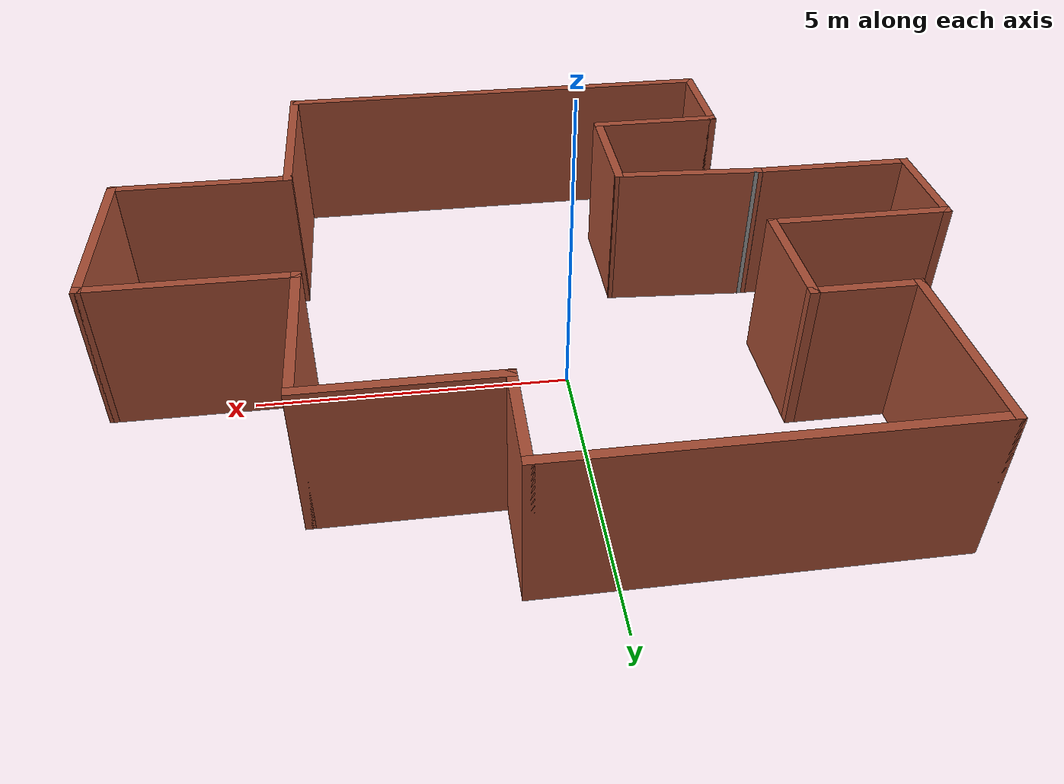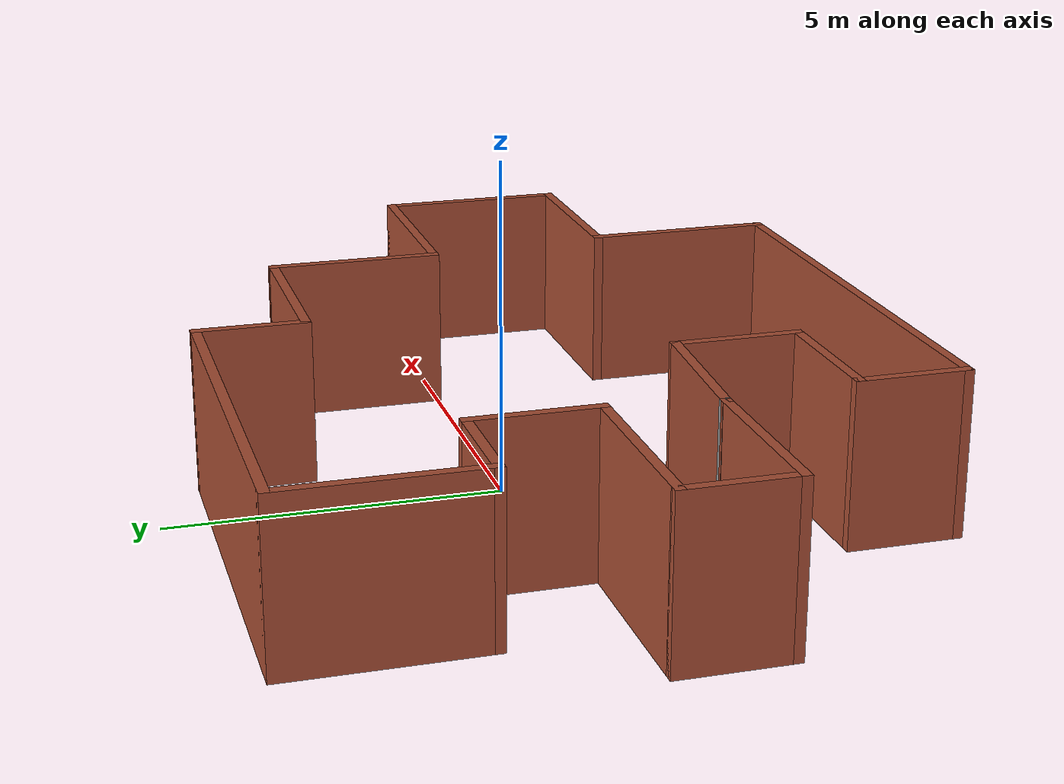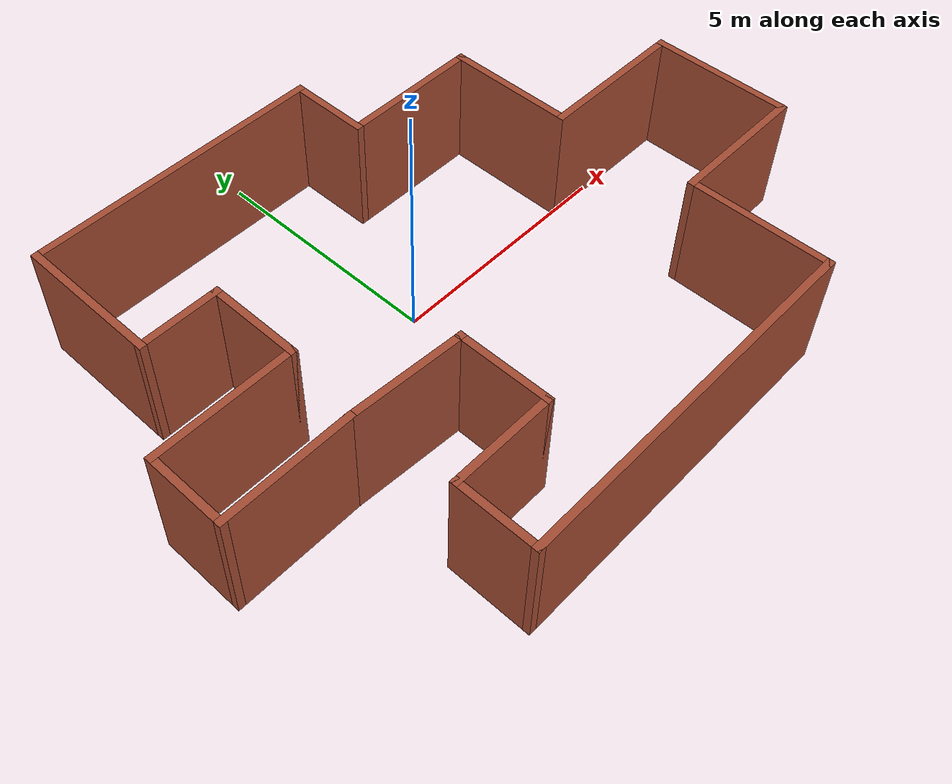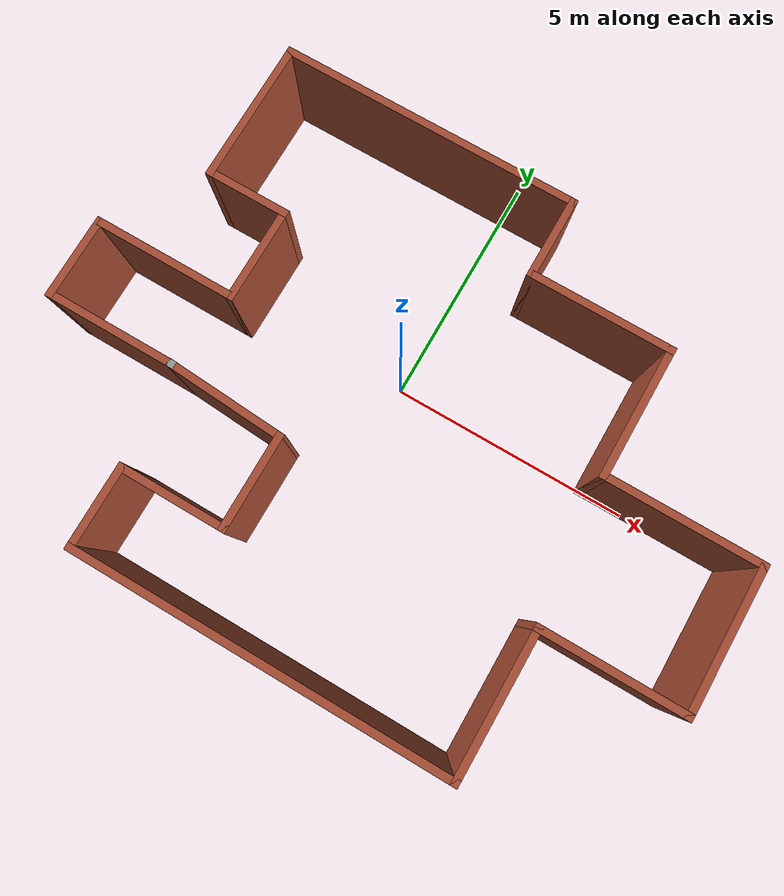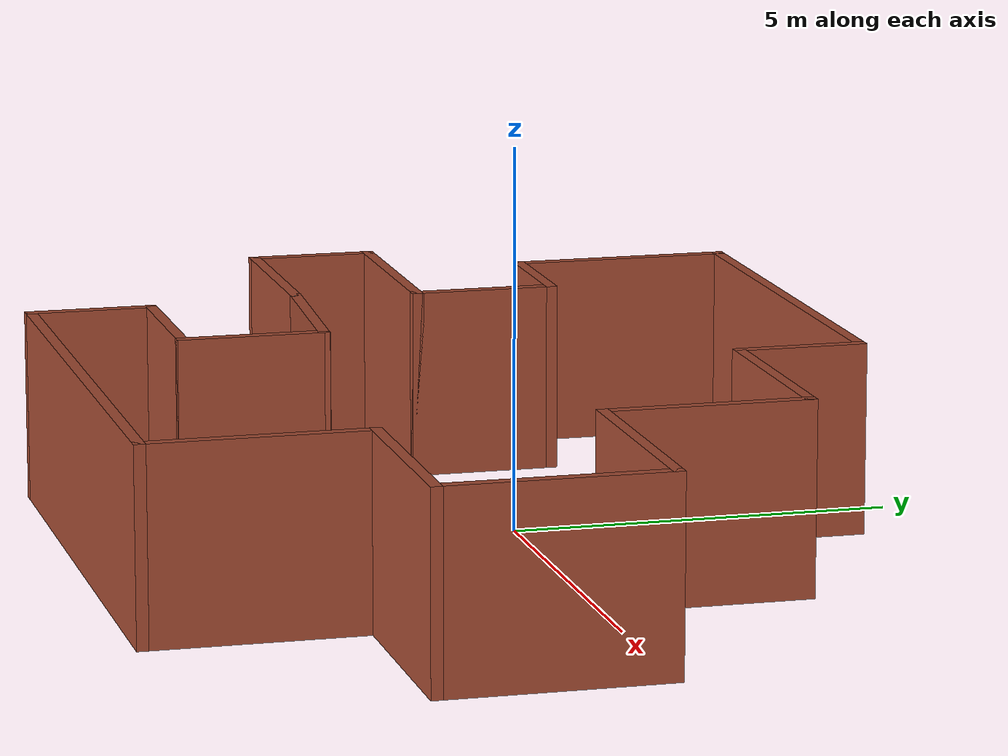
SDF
<?xml version='1.0'?>
<sdf version='1.7'>
  <model name='myworld'>
    <pose>0.52 -0.73 0 0 -0 0</pose>
    <link name='Wall_0'>
      <collision name='Wall_0_Collision'>
        <geometry>
          <box>
            <size>2.75 0.15 2.5</size>
          </box>
        </geometry>
        <pose>0 0 1.25 0 -0 0</pose>
      </collision>
      <visual name='Wall_0_Visual'>
        <pose>0 0 1.25 0 -0 0</pose>
        <geometry>
          <box>
            <size>2.75 0.15 2.5</size>
          </box>
        </geometry>
        <material>
          <script>
            <uri>file://media/materials/scripts/gazebo.material</uri>
            <name>Gazebo/Bricks</name>
          </script>
          <ambient>1 1 1 1</ambient>
        </material>
        <meta>
          <layer>0</layer>
        </meta>
      </visual>
      <pose>-5.35 -1.35 0 0 -0 3.14159</pose>
    </link>
    <link name='Wall_1'>
      <collision name='Wall_1_Collision'>
        <geometry>
          <box>
            <size>1.75 0.15 2.5</size>
          </box>
        </geometry>
        <pose>0 0 1.25 0 -0 0</pose>
      </collision>
      <visual name='Wall_1_Visual'>
        <pose>0 0 1.25 0 -0 0</pose>
        <geometry>
          <box>
            <size>1.75 0.15 2.5</size>
          </box>
        </geometry>
        <material>
          <script>
            <uri>file://media/materials/scripts/gazebo.material</uri>
            <name>Gazebo/Bricks</name>
          </script>
          <ambient>1 1 1 1</ambient>
        </material>
        <meta>
          <layer>0</layer>
        </meta>
      </visual>
      <pose>-6.65 -0.55 0 0 -0 1.5708</pose>
    </link>
    <link name='Wall_10'>
      <collision name='Wall_10_Collision'>
        <geometry>
          <box>
            <size>3.25 0.15 2.5</size>
          </box>
        </geometry>
        <pose>0 0 1.25 0 -0 0</pose>
      </collision>
      <visual name='Wall_10_Visual'>
        <pose>0 0 1.25 0 -0 0</pose>
        <geometry>
          <box>
            <size>3.25 0.15 2.5</size>
          </box>
        </geometry>
        <material>
          <script>
            <uri>file://media/materials/scripts/gazebo.material</uri>
            <name>Gazebo/Bricks</name>
          </script>
          <ambient>1 1 1 1</ambient>
        </material>
        <meta>
          <layer>0</layer>
        </meta>
      </visual>
      <pose>5.1 0.75 0 0 -0 0</pose>
    </link>
    <link name='Wall_11'>
      <collision name='Wall_11_Collision'>
        <geometry>
          <box>
            <size>3 0.15 2.5</size>
          </box>
        </geometry>
        <pose>0 0 1.25 0 -0 0</pose>
      </collision>
      <visual name='Wall_11_Visual'>
        <pose>0 0 1.25 0 -0 0</pose>
        <geometry>
          <box>
            <size>3 0.15 2.5</size>
          </box>
        </geometry>
        <material>
          <script>
            <uri>file://media/materials/scripts/gazebo.material</uri>
            <name>Gazebo/Bricks</name>
          </script>
          <ambient>1 1 1 1</ambient>
        </material>
        <meta>
          <layer>0</layer>
        </meta>
      </visual>
      <pose>6.65 -0.675 0 0 -0 -1.5708</pose>
    </link>
    <link name='Wall_12'>
      <collision name='Wall_12_Collision'>
        <geometry>
          <box>
            <size>3 0.15 2.5</size>
          </box>
        </geometry>
        <pose>0 0 1.25 0 -0 0</pose>
      </collision>
      <visual name='Wall_12_Visual'>
        <pose>0 0 1.25 0 -0 0</pose>
        <geometry>
          <box>
            <size>3 0.15 2.5</size>
          </box>
        </geometry>
        <material>
          <script>
            <uri>file://media/materials/scripts/gazebo.material</uri>
            <name>Gazebo/Bricks</name>
          </script>
          <ambient>1 1 1 1</ambient>
        </material>
        <meta>
          <layer>0</layer>
        </meta>
      </visual>
      <pose>5.225 -2.1 0 0 -0 3.14159</pose>
    </link>
    <link name='Wall_13'>
      <collision name='Wall_13_Collision'>
        <geometry>
          <box>
            <size>3 0.15 2.5</size>
          </box>
        </geometry>
        <pose>0 0 1.25 0 -0 0</pose>
      </collision>
      <visual name='Wall_13_Visual'>
        <pose>0 0 1.25 0 -0 0</pose>
        <geometry>
          <box>
            <size>3 0.15 2.5</size>
          </box>
        </geometry>
        <material>
          <script>
            <uri>file://media/materials/scripts/gazebo.material</uri>
            <name>Gazebo/Bricks</name>
          </script>
          <ambient>1 1 1 1</ambient>
        </material>
        <meta>
          <layer>0</layer>
        </meta>
      </visual>
      <pose>3.8 -3.525 0 0 -0 -1.5708</pose>
    </link>
    <link name='Wall_14'>
      <collision name='Wall_14_Collision'>
        <geometry>
          <box>
            <size>7.75 0.15 2.5</size>
          </box>
        </geometry>
        <pose>0 0 1.25 0 -0 0</pose>
      </collision>
      <visual name='Wall_14_Visual'>
        <pose>0 0 1.25 0 -0 0</pose>
        <geometry>
          <box>
            <size>7.75 0.15 2.5</size>
          </box>
        </geometry>
        <material>
          <script>
            <uri>file://media/materials/scripts/gazebo.material</uri>
            <name>Gazebo/Bricks</name>
          </script>
          <ambient>1 1 1 1</ambient>
        </material>
        <meta>
          <layer>0</layer>
        </meta>
      </visual>
      <pose>0 -4.95 0 0 -0 3.14159</pose>
    </link>
    <link name='Wall_15'>
      <collision name='Wall_15_Collision'>
        <geometry>
          <box>
            <size>1.75 0.15 2.5</size>
          </box>
        </geometry>
        <pose>0 0 1.25 0 -0 0</pose>
      </collision>
      <visual name='Wall_15_Visual'>
        <pose>0 0 1.25 0 -0 0</pose>
        <geometry>
          <box>
            <size>1.75 0.15 2.5</size>
          </box>
        </geometry>
        <material>
          <script>
            <uri>file://media/materials/scripts/gazebo.material</uri>
            <name>Gazebo/Bricks</name>
          </script>
          <ambient>1 1 1 1</ambient>
        </material>
        <meta>
          <layer>0</layer>
        </meta>
      </visual>
      <pose>-3.8 -4.15 0 0 -0 1.5708</pose>
    </link>
    <link name='Wall_16'>
      <collision name='Wall_16_Collision'>
        <geometry>
          <box>
            <size>2.25 0.15 2.5</size>
          </box>
        </geometry>
        <pose>0 0 1.25 0 -0 0</pose>
      </collision>
      <visual name='Wall_16_Visual'>
        <pose>0 0 1.25 0 -0 0</pose>
        <geometry>
          <box>
            <size>2.25 0.15 2.5</size>
          </box>
        </geometry>
        <material>
          <script>
            <uri>file://media/materials/scripts/gazebo.material</uri>
            <name>Gazebo/Bricks</name>
          </script>
          <ambient>1 1 1 1</ambient>
        </material>
        <meta>
          <layer>0</layer>
        </meta>
      </visual>
      <pose>-2.75 -3.35 0 0 -0 0</pose>
    </link>
    <link name='Wall_17'>
      <collision name='Wall_17_Collision'>
        <geometry>
          <box>
            <size>2 0.15 2.5</size>
          </box>
        </geometry>
        <pose>0 0 1.25 0 -0 0</pose>
      </collision>
      <visual name='Wall_17_Visual'>
        <pose>0 0 1.25 0 -0 0</pose>
        <geometry>
          <box>
            <size>2 0.15 2.5</size>
          </box>
        </geometry>
        <material>
          <script>
            <uri>file://media/materials/scripts/gazebo.material</uri>
            <name>Gazebo/Bricks</name>
          </script>
          <ambient>1 1 1 1</ambient>
        </material>
        <meta>
          <layer>0</layer>
        </meta>
      </visual>
      <pose>-1.7 -2.425 0 0 -0 1.5708</pose>
    </link>
    <link name='Wall_18'>
      <collision name='Wall_18_Collision'>
        <geometry>
          <box>
            <size>2.50478 0.15 2.5</size>
          </box>
        </geometry>
        <pose>0 0 1.25 0 -0 0</pose>
      </collision>
      <visual name='Wall_18_Visual'>
        <pose>0 0 1.25 0 -0 0</pose>
        <geometry>
          <box>
            <size>2.50478 0.15 2.5</size>
          </box>
        </geometry>
        <material>
          <script>
            <uri>file://media/materials/scripts/gazebo.material</uri>
            <name>Gazebo/Bricks</name>
          </script>
          <ambient>1 1 1 1</ambient>
        </material>
        <meta>
          <layer>0</layer>
        </meta>
      </visual>
      <pose>-2.875 -1.425 0 0 -0 3.07785</pose>
    </link>
    <link name='Wall_19'>
      <collision name='Wall_19_Collision'>
        <geometry>
          <box>
            <size>0.15 0.15 2.5</size>
          </box>
        </geometry>
        <pose>0 0 1.25 0 -0 0</pose>
      </collision>
      <visual name='Wall_19_Visual'>
        <pose>0 0 1.25 0 -0 0</pose>
        <geometry>
          <box>
            <size>0.15 0.15 2.5</size>
          </box>
        </geometry>
        <material>
          <script>
            <uri>file://media/materials/scripts/gazebo.material</uri>
            <name>Gazebo/Grey</name>
          </script>
          <ambient>1 1 1 1</ambient>
        </material>
        <meta>
          <layer>0</layer>
        </meta>
      </visual>
      <pose>-4.05 -1.35 0 0 -0 0</pose>
    </link>
    <link name='Wall_2'>
      <collision name='Wall_2_Collision'>
        <geometry>
          <box>
            <size>3 0.15 2.5</size>
          </box>
        </geometry>
        <pose>0 0 1.25 0 -0 0</pose>
      </collision>
      <visual name='Wall_2_Visual'>
        <pose>0 0 1.25 0 -0 0</pose>
        <geometry>
          <box>
            <size>3 0.15 2.5</size>
          </box>
        </geometry>
        <material>
          <script>
            <uri>file://media/materials/scripts/gazebo.material</uri>
            <name>Gazebo/Bricks</name>
          </script>
          <ambient>1 1 1 1</ambient>
        </material>
        <meta>
          <layer>0</layer>
        </meta>
      </visual>
      <pose>-5.225 0.25 0 0 -0 0</pose>
    </link>
    <link name='Wall_3'>
      <collision name='Wall_3_Collision'>
        <geometry>
          <box>
            <size>2 0.15 2.5</size>
          </box>
        </geometry>
        <pose>0 0 1.25 0 -0 0</pose>
      </collision>
      <visual name='Wall_3_Visual'>
        <pose>0 0 1.25 0 -0 0</pose>
        <geometry>
          <box>
            <size>2 0.15 2.5</size>
          </box>
        </geometry>
        <material>
          <script>
            <uri>file://media/materials/scripts/gazebo.material</uri>
            <name>Gazebo/Bricks</name>
          </script>
          <ambient>1 1 1 1</ambient>
        </material>
        <meta>
          <layer>0</layer>
        </meta>
      </visual>
      <pose>-3.8 1.175 0 0 -0 1.5708</pose>
    </link>
    <link name='Wall_4'>
      <collision name='Wall_4_Collision'>
        <geometry>
          <box>
            <size>1.75 0.15 2.5</size>
          </box>
        </geometry>
        <pose>0 0 1.25 0 -0 0</pose>
      </collision>
      <visual name='Wall_4_Visual'>
        <pose>0 0 1.25 0 -0 0</pose>
        <geometry>
          <box>
            <size>1.75 0.15 2.5</size>
          </box>
        </geometry>
        <material>
          <script>
            <uri>file://media/materials/scripts/gazebo.material</uri>
            <name>Gazebo/Bricks</name>
          </script>
          <ambient>1 1 1 1</ambient>
        </material>
        <meta>
          <layer>0</layer>
        </meta>
      </visual>
      <pose>-4.6 2.1 0 0 -0 3.14159</pose>
    </link>
    <link name='Wall_5'>
      <collision name='Wall_5_Collision'>
        <geometry>
          <box>
            <size>3 0.15 2.5</size>
          </box>
        </geometry>
        <pose>0 0 1.25 0 -0 0</pose>
      </collision>
      <visual name='Wall_5_Visual'>
        <pose>0 0 1.25 0 -0 0</pose>
        <geometry>
          <box>
            <size>3 0.15 2.5</size>
          </box>
        </geometry>
        <material>
          <script>
            <uri>file://media/materials/scripts/gazebo.material</uri>
            <name>Gazebo/Bricks</name>
          </script>
          <ambient>1 1 1 1</ambient>
        </material>
        <meta>
          <layer>0</layer>
        </meta>
      </visual>
      <pose>-5.4 3.525 0 0 -0 1.5708</pose>
    </link>
    <link name='Wall_6'>
      <collision name='Wall_6_Collision'>
        <geometry>
          <box>
            <size>6.25 0.15 2.5</size>
          </box>
        </geometry>
        <pose>0 0 1.25 0 -0 0</pose>
      </collision>
      <visual name='Wall_6_Visual'>
        <pose>0 0 1.25 0 -0 0</pose>
        <geometry>
          <box>
            <size>6.25 0.15 2.5</size>
          </box>
        </geometry>
        <material>
          <script>
            <uri>file://media/materials/scripts/gazebo.material</uri>
            <name>Gazebo/Bricks</name>
          </script>
          <ambient>1 1 1 1</ambient>
        </material>
        <meta>
          <layer>0</layer>
        </meta>
      </visual>
      <pose>-2.35 4.95 0 0 -0 0</pose>
    </link>
    <link name='Wall_7'>
      <collision name='Wall_7_Collision'>
        <geometry>
          <box>
            <size>1.75 0.15 2.5</size>
          </box>
        </geometry>
        <pose>0 0 1.25 0 -0 0</pose>
      </collision>
      <visual name='Wall_7_Visual'>
        <pose>0 0 1.25 0 -0 0</pose>
        <geometry>
          <box>
            <size>1.75 0.15 2.5</size>
          </box>
        </geometry>
        <material>
          <script>
            <uri>file://media/materials/scripts/gazebo.material</uri>
            <name>Gazebo/Bricks</name>
          </script>
          <ambient>1 1 1 1</ambient>
        </material>
        <meta>
          <layer>0</layer>
        </meta>
      </visual>
      <pose>0.7 4.15 0 0 -0 -1.5708</pose>
    </link>
    <link name='Wall_8'>
      <collision name='Wall_8_Collision'>
        <geometry>
          <box>
            <size>3 0.15 2.5</size>
          </box>
        </geometry>
        <pose>0 0 1.25 0 -0 0</pose>
      </collision>
      <visual name='Wall_8_Visual'>
        <pose>0 0 1.25 0 -0 0</pose>
        <geometry>
          <box>
            <size>3 0.15 2.5</size>
          </box>
        </geometry>
        <material>
          <script>
            <uri>file://media/materials/scripts/gazebo.material</uri>
            <name>Gazebo/Bricks</name>
          </script>
          <ambient>1 1 1 1</ambient>
        </material>
        <meta>
          <layer>0</layer>
        </meta>
      </visual>
      <pose>2.125 3.35 0 0 -0 0</pose>
    </link>
    <link name='Wall_9'>
      <collision name='Wall_9_Collision'>
        <geometry>
          <box>
            <size>2.75 0.15 2.5</size>
          </box>
        </geometry>
        <pose>0 0 1.25 0 -0 0</pose>
      </collision>
      <visual name='Wall_9_Visual'>
        <pose>0 0 1.25 0 -0 0</pose>
        <geometry>
          <box>
            <size>2.75 0.15 2.5</size>
          </box>
        </geometry>
        <material>
          <script>
            <uri>file://media/materials/scripts/gazebo.material</uri>
            <name>Gazebo/Bricks</name>
          </script>
          <ambient>1 1 1 1</ambient>
        </material>
        <meta>
          <layer>0</layer>
        </meta>
      </visual>
      <pose>3.55 2.05 0 0 -0 -1.5708</pose>
    </link>
    <static>1</static>
  </model>
</sdf>
